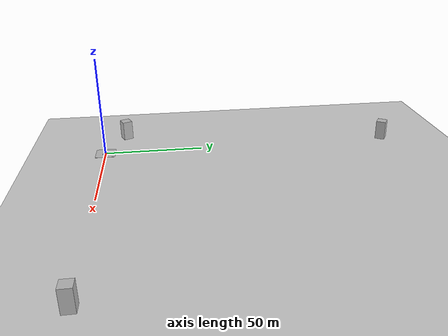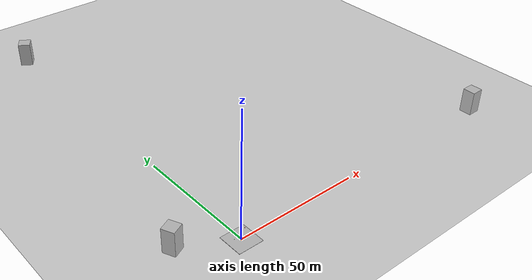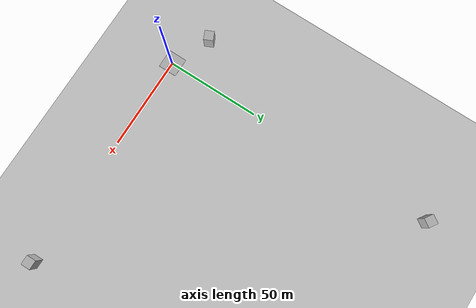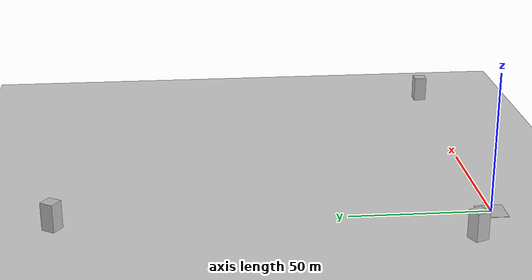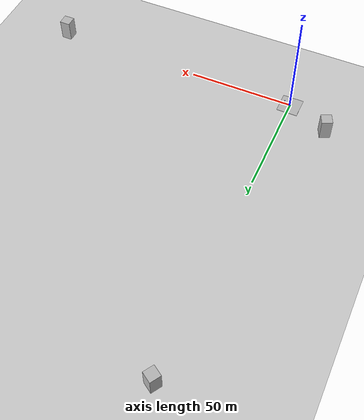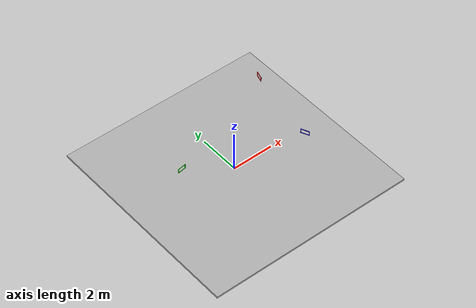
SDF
<sdf version="1.5">
 <world name="default">
  <scene><ambient>0.7 0.7 0.7 1.0</ambient><shadows>true</shadows></scene>
  <include><uri>model://sun</uri></include>
  <include><uri>model://ground_plane</uri></include>
  <spherical_coordinates>
   <surface_model>EARTH_WGS84</surface_model>
   <latitude_deg>0</latitude_deg>
   <longitude_deg>0</longitude_deg>
   <elevation>0</elevation>
   <heading_deg>0</heading_deg>
  </spherical_coordinates>
  <include><name>building1</name><uri>model://house</uri><pose>120 0 5 0 0 0</pose></include>
  <include><name>building2</name><uri>model://house</uri><pose>0 150 5 0 0 1</pose></include>
  <include><name>building3</name><uri>model://house</uri><pose>-20 10 5 0 0 2</pose></include>
  <include><name>floor</name><uri>model://DC/floor</uri><pose>0 0 0.025 0 0 0</pose></include>
  <include><name>frame_red</name><uri>model://DC/frame_red</uri><pose>3 2 2 0 0 6</pose></include>
  <include><name>frame_green</name><uri>model://DC/frame_green</uri><pose>-2 1 0.5 0 0 8</pose></include>
  <include><name>frame_blue</name><uri>model://DC/frame_blue</uri><pose>3 -1 1 0 0 13</pose></include>
  <include><name>drone</name><uri>model://DC/abejorro</uri><pose>0 0 0.2 0 0 0</pose></include>
 </world>
</sdf>

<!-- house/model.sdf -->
<sdf version="1.5">

	<model name="house">
	  <static>true</static>
	  <link name="link">

	    <collision name="collision">

		    <geometry>
		      <box>
		        <size>5 5 10</size>
		      </box>
		    </geometry>

        <surface>
          <friction>
            <ode>
              <mu>100.0</mu>
              <mu2>50.0</mu2>
              <slip1>0.0</slip1>
              <slip2>0.0</slip2>
            </ode>
          </friction>
        </surface>

	    </collision>

      <visual name="visual">
		    <geometry>
		      <box>
		        <size>5 5 10</size>
		      </box>
		    </geometry>
	    </visual>

	  </link>
	</model>

</sdf>

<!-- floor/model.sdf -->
<sdf version="1.5">

  <model name='floor'>
    <static>true</static>
    <link name='link'>
      <collision name='collisionsuelo'>
        <geometry>
          <box>
            <size>10 10 0.1</size>
          </box>
        </geometry>

        <surface>
          <friction>
            <ode>
              <mu>100.0</mu>
              <mu2>50.0</mu2>
              <slip1>0.0</slip1>
              <slip2>0.0</slip2>
            </ode>
          </friction>
        </surface>

      </collision>

      <visual name='visualsuelo'>
        <geometry>
          <box>
            <size>10 10 0.1</size>
          </box>
        </geometry>
        <material>
          <script>

            <uri>model://DC/floor/scripts</uri>
            <uri>model://DC/floor/materials</uri>
            <name>floorMat/Diffuse</name>
          </script>
        </material>
      </visual>
      <self_collide>0</self_collide>
      <kinematic>0</kinematic>
      <gravity>1</gravity>
    </link>
  </model>

</sdf>

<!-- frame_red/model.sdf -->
<sdf version="1.5">
<model name="frame_red">

<static>true</static>

<link name='framelink'>
    <!-- Marco de 40x20 cms. Borde de 3cms. -->

    <visual name='up'>
        <pose>0 0 0.10 0 0 0</pose>
        <geometry>
          <box>
            <size>0.02 0.42 0.02</size>
          </box>
        </geometry>
        <material>
          <ambient>1 0 0 1</ambient>
          <diffuse>1 0 0 1</diffuse>
        </material>
    </visual>

    <collision name='up_c'>
        <pose>0 0 0.10 0 0 0</pose>
        <geometry>
          <box>
            <size>0.02 0.42 0.02</size>
          </box>
        </geometry>
        <surface>
          <friction>
            <ode>
              <mu>0.1</mu>
              <mu2>0.2</mu2>
              <slip1>1.0</slip1>
              <slip2>1.0</slip2>
            </ode>
          </friction>
        </surface>
    </collision>

    <visual name='down'>
        <pose>0 0 -0.10 0 0 0</pose>
        <geometry>
          <box>
            <size>0.02 0.42 0.02</size>
          </box>
        </geometry>
        <material>
          <ambient>1 0 0 1</ambient>
          <diffuse>1 0 0 1</diffuse>
        </material>
    </visual>

    <collision name='down_c'>
        <pose>0 0 -0.10 0 0 0</pose>
        <geometry>
          <box>
            <size>0.02 0.42 0.02</size>
          </box>
        </geometry>
        <surface>
          <friction>
            <ode>
              <mu>0.1</mu>
              <mu2>0.2</mu2>
              <slip1>1.0</slip1>
              <slip2>1.0</slip2>
            </ode>
          </friction>
        </surface>
    </collision>

    <visual name='left'>
        <pose>0 -0.20 0 0 0 0</pose>
        <geometry>
          <box>
            <size>0.02 0.02 0.18</size>
          </box>
        </geometry>
        <material>
          <ambient>1 0 0 1</ambient>
          <diffuse>1 0 0 1</diffuse>
        </material>
    </visual>

    <collision name='left_c'>
        <pose>0 -0.20 0 0 0 0</pose>
        <geometry>
          <box>
            <size>0.02 0.02 0.18</size>
          </box>
        </geometry>
        <surface>
          <friction>
            <ode>
              <mu>0.1</mu>
              <mu2>0.2</mu2>
              <slip1>1.0</slip1>
              <slip2>1.0</slip2>
            </ode>
          </friction>
        </surface>
    </collision>

    <visual name='right'>
        <pose>0 0.20 0 0 0 0</pose>
        <geometry>
          <box>
            <size>0.02 0.02 0.18</size>
          </box>
        </geometry>
        <material>
          <ambient>1 0 0 1</ambient>
          <diffuse>1 0 0 1</diffuse>
        </material>
    </visual>

    <collision name='right_c'>
        <pose>0 0.20 0 0 0 0</pose>
        <geometry>
          <box>
            <size>0.02 0.02 0.18</size>
          </box>
        </geometry>
        <surface>
          <friction>
            <ode>
              <mu>0.1</mu>
              <mu2>0.2</mu2>
              <slip1>1.0</slip1>
              <slip2>1.0</slip2>
            </ode>
          </friction>
        </surface>
    </collision>

</link>

</model>

</sdf>

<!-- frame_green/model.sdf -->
<sdf version="1.5">
<model name="frame_green">

<static>true</static>

<link name='framelink'>
    <!-- Marco de 40x20 cms. Borde de 3cms. -->

    <visual name='up'>
        <pose>0 0 0.10 0 0 0</pose>
        <geometry>
          <box>
            <size>0.02 0.42 0.02</size>
          </box>
        </geometry>
        <material>
          <ambient>0 1 0 1</ambient>
          <diffuse>0 1 0 1</diffuse>
        </material>
    </visual>

    <collision name='up_c'>
        <pose>0 0 0.10 0 0 0</pose>
        <geometry>
          <box>
            <size>0.02 0.42 0.02</size>
          </box>
        </geometry>
        <surface>
          <friction>
            <ode>
              <mu>0.1</mu>
              <mu2>0.2</mu2>
              <slip1>1.0</slip1>
              <slip2>1.0</slip2>
            </ode>
          </friction>
        </surface>
    </collision>

    <visual name='down'>
        <pose>0 0 -0.10 0 0 0</pose>
        <geometry>
          <box>
            <size>0.02 0.42 0.02</size>
          </box>
        </geometry>
        <material>
          <ambient>0 1 0 1</ambient>
          <diffuse>0 1 0 1</diffuse>
        </material>
    </visual>

    <collision name='down_c'>
        <pose>0 0 -0.10 0 0 0</pose>
        <geometry>
          <box>
            <size>0.02 0.42 0.02</size>
          </box>
        </geometry>
        <surface>
          <friction>
            <ode>
              <mu>0.1</mu>
              <mu2>0.2</mu2>
              <slip1>1.0</slip1>
              <slip2>1.0</slip2>
            </ode>
          </friction>
        </surface>
    </collision>

    <visual name='left'>
        <pose>0 -0.20 0 0 0 0</pose>
        <geometry>
          <box>
            <size>0.02 0.02 0.18</size>
          </box>
        </geometry>
        <material>
          <ambient>0 1 0 1</ambient>
          <diffuse>0 1 0 1</diffuse>
        </material>
    </visual>

    <collision name='left_c'>
        <pose>0 -0.20 0 0 0 0</pose>
        <geometry>
          <box>
            <size>0.02 0.02 0.18</size>
          </box>
        </geometry>
        <surface>
          <friction>
            <ode>
              <mu>0.1</mu>
              <mu2>0.2</mu2>
              <slip1>1.0</slip1>
              <slip2>1.0</slip2>
            </ode>
          </friction>
        </surface>
    </collision>

    <visual name='right'>
        <pose>0 0.20 0 0 0 0</pose>
        <geometry>
          <box>
            <size>0.02 0.02 0.18</size>
          </box>
        </geometry>
        <material>
          <ambient>0 1 0 1</ambient>
          <diffuse>0 1 0 1</diffuse>
        </material>
    </visual>

    <collision name='right_c'>
        <pose>0 0.20 0 0 0 0</pose>
        <geometry>
          <box>
            <size>0.02 0.02 0.18</size>
          </box>
        </geometry>
        <surface>
          <friction>
            <ode>
              <mu>0.1</mu>
              <mu2>0.2</mu2>
              <slip1>1.0</slip1>
              <slip2>1.0</slip2>
            </ode>
          </friction>
        </surface>
    </collision>

</link>

</model>

</sdf>

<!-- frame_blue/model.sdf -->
<sdf version="1.5">
<model name="frame_blue">

<static>true</static>

<link name='framelink'>
    <!-- Marco de 40x20 cms. Borde de 3cms. -->

    <visual name='up'>
        <pose>0 0 0.10 0 0 0</pose>
        <geometry>
          <box>
            <size>0.02 0.42 0.02</size>
          </box>
        </geometry>
        <material>
          <ambient>0 0 1 1</ambient>
          <diffuse>0 0 1 1</diffuse>
        </material>
    </visual>

    <collision name='up_c'>
        <pose>0 0 0.10 0 0 0</pose>
        <geometry>
          <box>
            <size>0.02 0.42 0.02</size>
          </box>
        </geometry>
        <surface>
          <friction>
            <ode>
              <mu>0.1</mu>
              <mu2>0.2</mu2>
              <slip1>1.0</slip1>
              <slip2>1.0</slip2>
            </ode>
          </friction>
        </surface>
    </collision>

    <visual name='down'>
        <pose>0 0 -0.10 0 0 0</pose>
        <geometry>
          <box>
            <size>0.02 0.42 0.02</size>
          </box>
        </geometry>
        <material>
          <ambient>0 0 1 1</ambient>
          <diffuse>0 0 1 1</diffuse>
        </material>
    </visual>

    <collision name='down_c'>
        <pose>0 0 -0.10 0 0 0</pose>
        <geometry>
          <box>
            <size>0.02 0.42 0.02</size>
          </box>
        </geometry>
        <surface>
          <friction>
            <ode>
              <mu>0.1</mu>
              <mu2>0.2</mu2>
              <slip1>1.0</slip1>
              <slip2>1.0</slip2>
            </ode>
          </friction>
        </surface>
    </collision>

    <visual name='left'>
        <pose>0 -0.20 0 0 0 0</pose>
        <geometry>
          <box>
            <size>0.02 0.02 0.18</size>
          </box>
        </geometry>
        <material>
          <ambient>0 0 1 1</ambient>
          <diffuse>0 0 1 1</diffuse>
        </material>
    </visual>

    <collision name='left_c'>
        <pose>0 -0.20 0 0 0 0</pose>
        <geometry>
          <box>
            <size>0.02 0.02 0.18</size>
          </box>
        </geometry>
        <surface>
          <friction>
            <ode>
              <mu>0.1</mu>
              <mu2>0.2</mu2>
              <slip1>1.0</slip1>
              <slip2>1.0</slip2>
            </ode>
          </friction>
        </surface>
    </collision>

    <visual name='right'>
        <pose>0 0.20 0 0 0 0</pose>
        <geometry>
          <box>
            <size>0.02 0.02 0.18</size>
          </box>
        </geometry>
        <material>
          <ambient>0 0 1 1</ambient>
          <diffuse>0 0 1 1</diffuse>
        </material>
    </visual>

    <collision name='right_c'>
        <pose>0 0.20 0 0 0 0</pose>
        <geometry>
          <box>
            <size>0.02 0.02 0.18</size>
          </box>
        </geometry>
        <surface>
          <friction>
            <ode>
              <mu>0.1</mu>
              <mu2>0.2</mu2>
              <slip1>1.0</slip1>
              <slip2>1.0</slip2>
            </ode>
          </friction>
        </surface>
    </collision>

</link>

</model>

</sdf>

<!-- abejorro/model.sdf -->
<sdf version="1.5">
<model name="abejorro">

<static>false</static>

<link name='dronelink'>
    <!-- Rotores en distribucion cuadrada
         situados a 25 cms del centro de gravedad
    -->

    <visual name='fuselaje'>
        <pose>0 0 0 0 0 0</pose>
        <geometry>
          <box>
            <size>0.10 0.04 0.03</size>
          </box>
        </geometry>
        <material>
          <ambient>0.3 0.3 0.3 1</ambient>
          <diffuse>0.3 0.3 0.3 1</diffuse>
        </material>
    </visual>

    <collision name='fuselaje'>
        <pose>0 0 0 0 0 0</pose>
        <geometry>
          <box>
            <size>0.10 0.04 0.03</size>
          </box>
        </geometry>
        <surface>
          <friction>
            <ode>
              <mu>0.1</mu>
              <mu2>0.2</mu2>
              <slip1>1.0</slip1>
              <slip2>1.0</slip2>
            </ode>
          </friction>
        </surface>
    </collision>

    <visual name='camara'>
        <pose>0.065 0 0 0 0 0</pose>
        <geometry>
          <box>
            <size>0.03 0.02 0.02</size>
          </box>
        </geometry>
        <material>
          <ambient>0.2 0.2 0.2 1</ambient>
          <diffuse>0.2 0.2 0.2 1</diffuse>
        </material>
    </visual>

    <collision name='camara'>
        <pose>0.065 0 0 0 0 0</pose>
        <geometry>
          <box>
            <size>0.03 0.02 0.02</size>
          </box>
        </geometry>
        <surface>
          <friction>
            <ode>
              <mu>0.1</mu>
              <mu2>0.2</mu2>
              <slip1>1.0</slip1>
              <slip2>1.0</slip2>
            </ode>
          </friction>
        </surface>
    </collision>

	<sensor name='camera' type='camera'>
		<plugin name="camera_controller" filename="libgazebo_ros_camera.so">
			<alwaysOn>true</alwaysOn>
			<updateRate>0.0</updateRate>
        	<cameraName>onboard_camera</cameraName>
        	<robotNamespace>quadcopter</robotNamespace>
		</plugin>
        <pose>0.08 0 0 0 0 0</pose>
        <camera name='onboard camera'>
            <horizontal_fov>1.57</horizontal_fov>
            <image>
                <width>320</width>
                <height>240</height>
            </image>
            <clip>
                <near>0.01</near>
                <far>20</far>
            </clip>
        </camera>
        <always_on>1</always_on>
        <update_rate>10</update_rate>
        <visualize>0</visualize>
    </sensor>

    <visual name='brazo_NE'>
        <pose>0.0550 -0.0406 0 0 0 -1.0472</pose>
        <geometry>
          <box>
            <size>0.08 .01 .01</size>
          </box>
        </geometry>
        <material>
          <ambient>0.3 0.3 0.3 1</ambient>
          <diffuse>0.3 0.3 0.3 1</diffuse>
        </material>
    </visual>

    <collision name='brazo_NE'>
        <pose>0.0550 -0.0406 0 0 0 -1.0472</pose>
        <geometry>
          <box>
            <size>0.08 .01 .01</size>
          </box>
        </geometry>
        <surface>
          <friction>
            <ode>
              <mu>0.1</mu>
              <mu2>0.2</mu2>
              <slip1>1.0</slip1>
              <slip2>1.0</slip2>
            </ode>
          </friction>
        </surface>
    </collision>

    <visual name="motor_NE">
        <pose>0.0750 -0.0750 -0.01 0 0 0</pose>
        <geometry>
            <cylinder>
                <radius>.005</radius>
                <length>.04</length>
            </cylinder>
        </geometry>
        <material>
            <ambient>0 0 0 1</ambient>  <!--color Red Green Blue Alpha [0-1] -->
            <diffuse>0 0 0 1</diffuse>
        </material>
    </visual>

    <collision name="motor_NE">
        <pose>0.0750 -0.0750 -0.01 0 0 0</pose>
        <geometry>
            <cylinder>
                <radius>.005</radius>
                <length>.04</length>
            </cylinder>
        </geometry>
        <surface>
            <friction>
                <ode>
                <mu>100.0</mu>
                <mu2>50.0</mu2>
                <slip1>0.0</slip1>
                <slip2>0.0</slip2>
                </ode>
            </friction>
        </surface>
    </collision>

    <visual name="rotor_NE">
        <pose>0.0750 -0.0750 0.01 0 0 0</pose>
        <geometry>
            <cylinder>
                <radius>0.05</radius>
                <length>.005</length>
            </cylinder>
        </geometry>
	<material>
            <ambient>0 1 0 0.5</ambient>  <!--color Red Green Blue Alpha [0-1] -->
            <diffuse>0 1 0 0.5</diffuse>
        </material>
    </visual>

    <collision name="rotor_NE">
        <pose>0.0750 -0.0750 0.01 0 0 0</pose>
        <geometry>
            <cylinder>
                <radius>0.05</radius>
                <length>.005</length>
            </cylinder>
        </geometry>
        <surface>
            <friction>
                <ode>
                <mu>0.1</mu>
                <mu2>0.2</mu2>
                <slip1>1.0</slip1>
                <slip2>1.0</slip2>
                </ode>
            </friction>
        </surface>
    </collision>

    <visual name='brazo_NW'>
        <pose>0.0550 0.0406 0 0 0 1.0472</pose>
        <geometry>
          <box>
            <size>0.08 .01 .01</size>
          </box>
        </geometry>
        <material>
          <ambient>0.3 0.3 0.3 1</ambient>
          <diffuse>0.3 0.3 0.3 1</diffuse>
        </material>
    </visual>

    <collision name='brazo_NW'>
        <pose>0.0550 0.0406 0 0 0 1.0472</pose>
        <geometry>
          <box>
            <size>0.08 .01 .01</size>
          </box>
        </geometry>
        <surface>
          <friction>
            <ode>
              <mu>0.1</mu>
              <mu2>0.2</mu2>
              <slip1>1.0</slip1>
              <slip2>1.0</slip2>
            </ode>
          </friction>
        </surface>
    </collision>

    <visual name="motor_NW">
        <pose>0.0750 0.0750 -0.01 0 0 0</pose>
        <geometry>
            <cylinder>
                <radius>.005</radius>
                <length>.04</length>
            </cylinder>
        </geometry>
        <material>
            <ambient>0 0 0 1</ambient>  <!--color Red Green Blue Alpha [0-1] -->
            <diffuse>0 0 0 1</diffuse>
        </material>
    </visual>

    <collision name="motor_NW">
        <pose>0.0750 0.0750 -0.01 0 0 0</pose>
        <geometry>
            <cylinder>
                <radius>.005</radius>
                <length>.04</length>
            </cylinder>
        </geometry>
        <surface>
            <friction>
                <ode>
                <mu>100.0</mu>
                <mu2>50.0</mu2>
                <slip1>0.0</slip1>
                <slip2>0.0</slip2>
                </ode>
            </friction>
        </surface>
    </collision>

    <visual name="rotor_NW">
        <pose>0.0750 0.0750 0.01 0 0 0</pose>
        <geometry>
            <cylinder>
                <radius>0.05</radius>
                <length>.005</length>
            </cylinder>
        </geometry>
	<material>
            <ambient>0 1 0 0.5</ambient>  <!--color Red Green Blue Alpha [0-1] -->
            <diffuse>0 1 0 0.5</diffuse>
        </material>
    </visual>

    <collision name="rotor_NW">
        <pose>0.0750 0.0750 0.01 0 0 0</pose>
        <geometry>
            <cylinder>
                <radius>0.05</radius>
                <length>.005</length>
            </cylinder>
        </geometry>
        <surface>
            <friction>
                <ode>
                <mu>0.1</mu>
                <mu2>0.2</mu2>
                <slip1>1.0</slip1>
                <slip2>1.0</slip2>
                </ode>
            </friction>
        </surface>
    </collision>

    <visual name='brazo_SE'>
        <pose>-0.0550 -0.0406 0 0 0 1.0472</pose>
        <geometry>
          <box>
            <size>0.08 .01 .01</size>
          </box>
        </geometry>
        <material>
          <ambient>0.3 0.3 0.3 1</ambient>
          <diffuse>0.3 0.3 0.3 1</diffuse>
        </material>
    </visual>

    <collision name='brazo_SE'>
        <pose>-0.0550 -0.0406 0 0 0 1.0472</pose>
        <geometry>
          <box>
            <size>0.08 .01 .01</size>
          </box>
        </geometry>
        <surface>
          <friction>
            <ode>
              <mu>0.1</mu>
              <mu2>0.2</mu2>
              <slip1>1.0</slip1>
              <slip2>1.0</slip2>
            </ode>
          </friction>
        </surface>
    </collision>

    <visual name="motor_SE">
        <pose>-0.0750 -0.0750 -0.01 0 0 0</pose>
        <geometry>
            <cylinder>
                <radius>.005</radius>
                <length>.04</length>
            </cylinder>
        </geometry>
        <material>
            <ambient>0 0 0 1</ambient>  <!--color Red Green Blue Alpha [0-1] -->
            <diffuse>0 0 0 1</diffuse>
        </material>
    </visual>

    <collision name="motor_SE">
        <pose>-0.0750 -0.0750 -0.01 0 0 0</pose>
        <geometry>
            <cylinder>
                <radius>.005</radius>
                <length>.04</length>
            </cylinder>
        </geometry>
        <surface>
            <friction>
                <ode>
                <mu>100.0</mu>
                <mu2>50.0</mu2>
                <slip1>0.0</slip1>
                <slip2>0.0</slip2>
                </ode>
            </friction>
        </surface>
    </collision>

    <visual name="rotor_SE">
        <pose>-0.0750 -0.0750 0.01 0 0 0</pose>
        <geometry>
            <cylinder>
                <radius>0.05</radius>
                <length>.005</length>
            </cylinder>
        </geometry>
	<material>
            <ambient>1 0 0 0.5</ambient>  <!--color Red Green Blue Alpha [0-1] -->
            <diffuse>1 0 0 0.5</diffuse>
        </material>
    </visual>

    <collision name="rotor_SE">
        <pose>-0.0750 -0.0750 0.01 0 0 0</pose>
        <geometry>
            <cylinder>
                <radius>0.05</radius>
                <length>.005</length>
            </cylinder>
        </geometry>
        <surface>
            <friction>
                <ode>
                <mu>0.1</mu>
                <mu2>0.2</mu2>
                <slip1>1.0</slip1>
                <slip2>1.0</slip2>
                </ode>
            </friction>
        </surface>
    </collision>

    <visual name='brazo_SW'>
        <pose>-0.0550 0.0406 0 0 0 -1.0472</pose>
        <geometry>
          <box>
            <size>0.08 .01 .01</size>
          </box>
        </geometry>
        <material>
          <ambient>0.3 0.3 0.3 1</ambient>
          <diffuse>0.3 0.3 0.3 1</diffuse>
        </material>
    </visual>

    <collision name='brazo_SW'>
        <pose>-0.0550 0.0406 0 0 0 -1.0472</pose>
        <geometry>
          <box>
            <size>0.08 .01 .01</size>
          </box>
        </geometry>
        <surface>
          <friction>
            <ode>
              <mu>0.1</mu>
              <mu2>0.2</mu2>
              <slip1>1.0</slip1>
              <slip2>1.0</slip2>
            </ode>
          </friction>
        </surface>
    </collision>

    <visual name="motor_SW">
        <pose>-0.0750 0.0750 -0.01 0 0 0</pose>
        <geometry>
            <cylinder>
                <radius>.005</radius>
                <length>.04</length>
            </cylinder>
        </geometry>
        <material>
            <ambient>0 0 0 1</ambient>  <!--color Red Green Blue Alpha [0-1] -->
            <diffuse>0 0 0 1</diffuse>
        </material>
    </visual>

    <collision name="motor_SW">
        <pose>-0.0750 0.0750 -0.01 0 0 0</pose>
        <geometry>
            <cylinder>
                <radius>.005</radius>
                <length>.04</length>
            </cylinder>
        </geometry>
        <surface>
            <friction>
                <ode>
                <mu>100.0</mu>
                <mu2>50.0</mu2>
                <slip1>0.0</slip1>
                <slip2>0.0</slip2>
                </ode>
            </friction>
        </surface>
    </collision>

    <visual name="rotor_SW">
        <pose>-0.0750 0.0750 0.01 0 0 0</pose>
        <geometry>
            <cylinder>
                <radius>0.05</radius>
                <length>.005</length>
            </cylinder>
        </geometry>
	<material>
            <ambient>1 0 0 0.5</ambient>  <!--color Red Green Blue Alpha [0-1] -->
            <diffuse>1 0 0 0.5</diffuse>
        </material>
    </visual>

    <collision name="rotor_SW">
        <pose>-0.0750 0.0750 0.01 0 0 0</pose>
        <geometry>
            <cylinder>
                <radius>0.05</radius>
                <length>.005</length>
            </cylinder>
        </geometry>
        <surface>
            <friction>
                <ode>
                <mu>0.1</mu>
                <mu2>0.2</mu2>
                <slip1>1.0</slip1>
                <slip2>1.0</slip2>
                </ode>
            </friction>
        </surface>
    </collision>

    <inertial>
        <mass>0.300</mass>

        <inertia>                <!-- http://en.wikipedia.org/wiki/List_of_moments_of_inertia -->
          <ixx>0.001022500</ixx> <!-- for a box: ixx = 1/12 * mass * (y*y + z*z) -->
          <ixy>0.0</ixy>         <!-- for a box: ixy = 0 -->
          <ixz>0.0</ixz>         <!-- for a box: ixz = 0 -->
          <iyy>0.001022500</iyy> <!-- for a box: iyy = 1/12 * mass * (x*x + z*z) -->
          <iyz>0.0</iyz>         <!-- for a box: iyz = 0 -->
          <izz>0.002000000</izz> <!-- for a box: izz = 1/12 * mass * (x*x + y*y) -->
        </inertia>
    </inertial>

</link>

</model>

</sdf>
